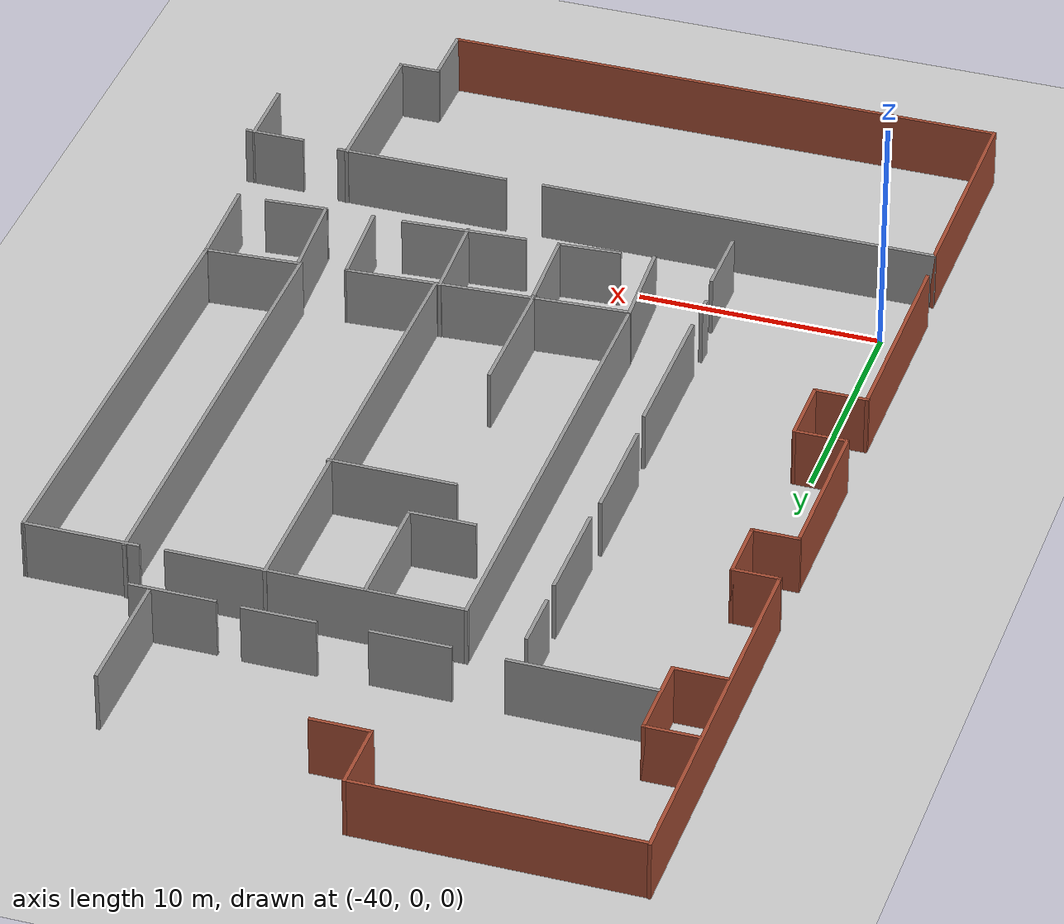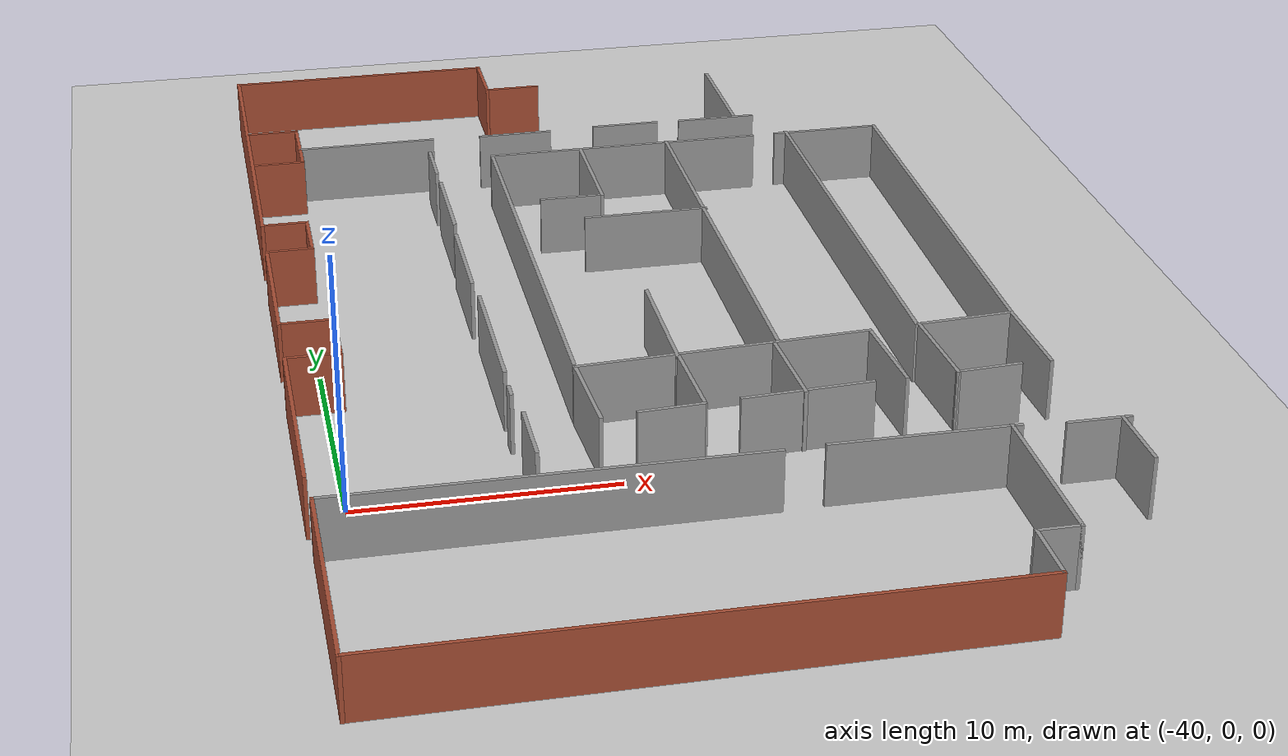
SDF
<sdf version="1.7">
 <world name="default">
  <model name="ground_plane">
   <static>1</static>
   <link name="link">
    <collision name="collision">
     <geometry><plane><normal>0 0 1</normal><size>100 100</size></plane></geometry>
     <surface><friction><ode><mu>100</mu><mu2>50</mu2></ode></friction></surface>
    </collision>
    <visual name="visual">
     <cast_shadows>0</cast_shadows>
     <geometry><plane><normal>0 0 1</normal><size>100 100</size></plane></geometry>
     <material>
      <script><uri>file://media/materials/scripts/gazebo.material</uri><name>Gazebo/Grey</name></script>
     </material>
    </visual>
   </link>
  </model>
  <model name="Sherman_ground">
   <pose>-0.396386 10.2382 0 0 -0 0</pose>
   <link name="Wall_113">
    <collision name="Wall_113_Collision">
     <geometry><box><size>7.25 0.15 2.5</size></box></geometry>
     <pose>0 0 1.25 0 -0 0</pose>
    </collision>
    <visual name="Wall_113_Visual">
     <pose>0 0 1.25 0 -0 0</pose>
     <geometry><box><size>7.25 0.15 2.5</size></box></geometry>
     <material>
      <script><uri>file://media/materials/scripts/gazebo.material</uri><name>Gazebo/Grey</name></script>
      <ambient>1 1 1 1</ambient>
     </material>
     <meta><layer>0</layer></meta>
    </visual>
    <pose>-19.366 -13.1466 0 0 -0 3.14159</pose>
   </link>
   <link name="Wall_117">
    <collision name="Wall_117_Collision">
     <geometry><box><size>4.1198 0.15 2.5</size></box></geometry>
     <pose>0 0 1.25 0 -0 0</pose>
    </collision>
    <visual name="Wall_117_Visual">
     <pose>0 0 1.25 0 -0 0</pose>
     <geometry><box><size>4.1198 0.15 2.5</size></box></geometry>
     <material>
      <script><uri>file://media/materials/scripts/gazebo.material</uri><name>Gazebo/Grey</name></script>
      <ambient>1 1 1 1</ambient>
     </material>
     <meta><layer>0</layer></meta>
    </visual>
    <pose>-30.4407 -7.68509 0 0 -0 -1.51982</pose>
   </link>
   <link name="Wall_119">
    <collision name="Wall_119_Collision">
     <geometry><box><size>11.7407 0.15 2.5</size></box></geometry>
     <pose>0 0 1.25 0 -0 0</pose>
    </collision>
    <visual name="Wall_119_Visual">
     <pose>0 0 1.25 0 -0 0</pose>
     <geometry><box><size>11.7407 0.15 2.5</size></box></geometry>
     <material>
      <script><uri>file://media/materials/scripts/gazebo.material</uri><name>Gazebo/Grey</name></script>
      <ambient>1 1 1 1</ambient>
     </material>
     <meta><layer>0</layer></meta>
    </visual>
    <pose>-24.7567 -5.35889 0 0 -0 0.059371</pose>
   </link>
   <link name="Wall_120">
    <collision name="Wall_120_Collision">
     <geometry><box><size>4.08169 0.15 2.5</size></box></geometry>
     <pose>0 0 1.25 0 -0 0</pose>
    </collision>
    <visual name="Wall_120_Visual">
     <pose>0 0 1.25 0 -0 0</pose>
     <geometry><box><size>4.08169 0.15 2.5</size></box></geometry>
     <material>
      <script><uri>file://media/materials/scripts/gazebo.material</uri><name>Gazebo/Grey</name></script>
      <ambient>1 1 1 1</ambient>
     </material>
     <meta><layer>0</layer></meta>
    </visual>
    <pose>-18.8502 -6.97712 0 0 -0 -1.50902</pose>
   </link>
   <link name="Wall_122">
    <collision name="Wall_122_Collision">
     <geometry><box><size>4.15837 0.15 2.5</size></box></geometry>
     <pose>0 0 1.25 0 -0 0</pose>
    </collision>
    <visual name="Wall_122_Visual">
     <pose>0 0 1.25 0 -0 0</pose>
     <geometry><box><size>4.15837 0.15 2.5</size></box></geometry>
     <material>
      <script><uri>file://media/materials/scripts/gazebo.material</uri><name>Gazebo/Grey</name></script>
      <ambient>1 1 1 1</ambient>
     </material>
     <meta><layer>0</layer></meta>
    </visual>
    <pose>-22.7339 -7.21985 0 0 -0 -1.53041</pose>
   </link>
   <link name="Wall_124">
    <collision name="Wall_124_Collision">
     <geometry><box><size>5.17612 0.15 2.5</size></box></geometry>
     <pose>0 0 1.25 0 -0 0</pose>
    </collision>
    <visual name="Wall_124_Visual">
     <pose>0 0 1.25 0 -0 0</pose>
     <geometry><box><size>5.17612 0.15 2.5</size></box></geometry>
     <material>
      <script><uri>file://media/materials/scripts/gazebo.material</uri><name>Gazebo/Grey</name></script>
      <ambient>1 1 1 1</ambient>
     </material>
     <meta><layer>0</layer></meta>
    </visual>
    <pose>-22.5272 -9.13677 0 0 -0 0.0609</pose>
   </link>
   <link name="Wall_126">
    <collision name="Wall_126_Collision">
     <geometry><box><size>4.0991 0.15 2.5</size></box></geometry>
     <pose>0 0 1.25 0 -0 0</pose>
    </collision>
    <visual name="Wall_126_Visual">
     <pose>0 0 1.25 0 -0 0</pose>
     <geometry><box><size>4.0991 0.15 2.5</size></box></geometry>
     <material>
      <script><uri>file://media/materials/scripts/gazebo.material</uri><name>Gazebo/Grey</name></script>
      <ambient>1 1 1 1</ambient>
     </material>
     <meta><layer>0</layer></meta>
    </visual>
    <pose>-26.5192 -7.40842 0 0 -0 -1.53206</pose>
   </link>
   <link name="Wall_128">
    <collision name="Wall_128_Collision">
     <geometry><box><size>2.63252 0.15 2.5</size></box></geometry>
     <pose>0 0 1.25 0 -0 0</pose>
    </collision>
    <visual name="Wall_128_Visual">
     <pose>0 0 1.25 0 -0 0</pose>
     <geometry><box><size>2.63252 0.15 2.5</size></box></geometry>
     <material>
      <script><uri>file://media/materials/scripts/gazebo.material</uri><name>Gazebo/Grey</name></script>
      <ambient>1 1 1 1</ambient>
     </material>
     <meta><layer>0</layer></meta>
    </visual>
    <pose>-27.6816 -9.45797 0 0 -0 0.06165</pose>
   </link>
   <link name="Wall_132">
    <collision name="Wall_132_Collision">
     <geometry><box><size>4.16245 0.15 2.5</size></box></geometry>
     <pose>0 0 1.25 0 -0 0</pose>
    </collision>
    <visual name="Wall_132_Visual">
     <pose>0 0 1.25 0 -0 0</pose>
     <geometry><box><size>4.16245 0.15 2.5</size></box></geometry>
     <material>
      <script><uri>file://media/materials/scripts/gazebo.material</uri><name>Gazebo/Grey</name></script>
      <ambient>1 1 1 1</ambient>
     </material>
     <meta><layer>0</layer></meta>
    </visual>
    <pose>-16.8571 -6.87607 0 0 -0 -1.51026</pose>
   </link>
   <link name="Wall_133">
    <collision name="Wall_133_Collision">
     <geometry><box><size>2.62309 0.15 2.5</size></box></geometry>
     <pose>0 0 1.25 0 -0 0</pose>
    </collision>
    <visual name="Wall_133_Visual">
     <pose>0 0 1.25 0 -0 0</pose>
     <geometry><box><size>2.62309 0.15 2.5</size></box></geometry>
     <material>
      <script><uri>file://media/materials/scripts/gazebo.material</uri><name>Gazebo/Grey</name></script>
      <ambient>1 1 1 1</ambient>
     </material>
     <meta><layer>0</layer></meta>
    </visual>
    <pose>-15.5018 -8.79771 0 0 -0 0.06548</pose>
   </link>
   <link name="Wall_135">
    <collision name="Wall_135_Collision">
     <geometry><box><size>3.96056 0.15 2.5</size></box></geometry>
     <pose>0 0 1.25 0 -0 0</pose>
    </collision>
    <visual name="Wall_135_Visual">
     <pose>0 0 1.25 0 -0 0</pose>
     <geometry><box><size>3.96056 0.15 2.5</size></box></geometry>
     <material>
      <script><uri>file://media/materials/scripts/gazebo.material</uri><name>Gazebo/Grey</name></script>
      <ambient>1 1 1 1</ambient>
     </material>
     <meta><layer>0</layer></meta>
    </visual>
    <pose>-15.077 -4.75215 0 0 -0 0.063743</pose>
   </link>
   <link name="Wall_136">
    <collision name="Wall_136_Collision">
     <geometry><box><size>4.23782 0.15 2.5</size></box></geometry>
     <pose>0 0 1.25 0 -0 0</pose>
    </collision>
    <visual name="Wall_136_Visual">
     <pose>0 0 1.25 0 -0 0</pose>
     <geometry><box><size>4.23782 0.15 2.5</size></box></geometry>
     <material>
      <script><uri>file://media/materials/scripts/gazebo.material</uri><name>Gazebo/Grey</name></script>
      <ambient>1 1 1 1</ambient>
     </material>
     <meta><layer>0</layer></meta>
    </visual>
    <pose>-13.1149 -6.67379 0 0 -0 -1.5411</pose>
   </link>
   <link name="Wall_138">
    <collision name="Wall_138_Collision">
     <geometry><box><size>19.4165 0.15 2.5</size></box></geometry>
     <pose>0 0 1.25 0 -0 0</pose>
    </collision>
    <visual name="Wall_138_Visual">
     <pose>0 0 1.25 0 -0 0</pose>
     <geometry><box><size>19.4165 0.15 2.5</size></box></geometry>
     <material>
      <script><uri>file://media/materials/scripts/gazebo.material</uri><name>Gazebo/Grey</name></script>
      <ambient>1 1 1 1</ambient>
     </material>
     <meta><layer>0</layer></meta>
    </visual>
    <pose>-13.0667 5.00187 0 0 -0 -1.5821</pose>
   </link>
   <link name="Wall_140">
    <collision name="Wall_140_Collision">
     <geometry><box><size>19.75 0.15 2.5</size></box></geometry>
     <pose>0 0 1.25 0 -0 0</pose>
    </collision>
    <visual name="Wall_140_Visual">
     <pose>0 0 1.25 0 -0 0</pose>
     <geometry><box><size>19.75 0.15 2.5</size></box></geometry>
     <material>
      <script><uri>file://media/materials/scripts/gazebo.material</uri><name>Gazebo/Grey</name></script>
      <ambient>1 1 1 1</ambient>
     </material>
     <meta><layer>0</layer></meta>
    </visual>
    <pose>-17.0706 4.92221 0 0 -0 -1.5708</pose>
   </link>
   <link name="Wall_145">
    <collision name="Wall_145_Collision">
     <geometry><box><size>20.25 0.15 2.5</size></box></geometry>
     <pose>0 0 1.25 0 -0 0</pose>
    </collision>
    <visual name="Wall_145_Visual">
     <pose>0 0 1.25 0 -0 0</pose>
     <geometry><box><size>20.25 0.15 2.5</size></box></geometry>
     <material>
      <script><uri>file://media/materials/scripts/gazebo.material</uri><name>Gazebo/Grey</name></script>
      <ambient>1 1 1 1</ambient>
     </material>
     <meta><layer>0</layer></meta>
    </visual>
    <pose>-30.5472 4.55394 0 0 -0 -1.5708</pose>
   </link>
   <link name="Wall_147">
    <collision name="Wall_147_Collision">
     <geometry><box><size>5.75 0.15 2.5</size></box></geometry>
     <pose>0 0 1.25 0 -0 0</pose>
    </collision>
    <visual name="Wall_147_Visual">
     <pose>0 0 1.25 0 -0 0</pose>
     <geometry><box><size>5.75 0.15 2.5</size></box></geometry>
     <material>
      <script><uri>file://media/materials/scripts/gazebo.material</uri><name>Gazebo/Grey</name></script>
      <ambient>1 1 1 1</ambient>
     </material>
     <meta><layer>0</layer></meta>
    </visual>
    <pose>-26.6251 -2.78473 0 0 -0 -1.5708</pose>
   </link>
   <link name="Wall_149">
    <collision name="Wall_149_Collision">
     <geometry><box><size>20 0.15 2.5</size></box></geometry>
     <pose>0 0 1.25 0 -0 0</pose>
    </collision>
    <visual name="Wall_149_Visual">
     <pose>0 0 1.25 0 -0 0</pose>
     <geometry><box><size>20 0.15 2.5</size></box></geometry>
     <material>
      <script><uri>file://media/materials/scripts/gazebo.material</uri><name>Gazebo/Grey</name></script>
      <ambient>1 1 1 1</ambient>
     </material>
     <meta><layer>0</layer></meta>
    </visual>
    <pose>-22.6384 4.70426 0 0 -0 -1.5708</pose>
   </link>
   <link name="Wall_151">
    <collision name="Wall_151_Collision">
     <geometry><box><size>5.25 0.15 2.5</size></box></geometry>
     <pose>0 0 1.25 0 -0 0</pose>
    </collision>
    <visual name="Wall_151_Visual">
     <pose>0 0 1.25 0 -0 0</pose>
     <geometry><box><size>5.25 0.15 2.5</size></box></geometry>
     <material>
      <script><uri>file://media/materials/scripts/gazebo.material</uri><name>Gazebo/Grey</name></script>
      <ambient>1 1 1 1</ambient>
     </material>
     <meta><layer>0</layer></meta>
    </visual>
    <pose>-25.1129 7.27848 0 0 -0 0</pose>
   </link>
   <link name="Wall_154">
    <collision name="Wall_154_Collision">
     <geometry><box><size>3 0.15 2.5</size></box></geometry>
     <pose>0 0 1.25 0 -0 0</pose>
    </collision>
    <visual name="Wall_154_Visual">
     <pose>0 0 1.25 0 -0 0</pose>
     <geometry><box><size>3 0.15 2.5</size></box></geometry>
     <material>
      <script><uri>file://media/materials/scripts/gazebo.material</uri><name>Gazebo/Grey</name></script>
      <ambient>1 1 1 1</ambient>
     </material>
     <meta><layer>0</layer></meta>
    </visual>
    <pose>-32.9828 -10.229 0 0 -0 1.5708</pose>
   </link>
   <link name="Wall_156">
    <collision name="Wall_156_Collision">
     <geometry><box><size>0.75 0.15 2.5</size></box></geometry>
     <pose>0 0 1.25 0 -0 0</pose>
    </collision>
    <visual name="Wall_156_Visual">
     <pose>0 0 1.25 0 -0 0</pose>
     <geometry><box><size>0.75 0.15 2.5</size></box></geometry>
     <material>
      <script><uri>file://media/materials/scripts/gazebo.material</uri><name>Gazebo/Grey</name></script>
      <ambient>1 1 1 1</ambient>
     </material>
     <meta><layer>0</layer></meta>
    </visual>
    <pose>-33.1938 -7.02705 0 0 -0 1.5708</pose>
   </link>
   <link name="Wall_158">
    <collision name="Wall_158_Collision">
     <geometry><box><size>6.5 0.15 2.5</size></box></geometry>
     <pose>0 0 1.25 0 -0 0</pose>
    </collision>
    <visual name="Wall_158_Visual">
     <pose>0 0 1.25 0 -0 0</pose>
     <geometry><box><size>6.5 0.15 2.5</size></box></geometry>
     <material>
      <script><uri>file://media/materials/scripts/gazebo.material</uri><name>Gazebo/Grey</name></script>
      <ambient>1 1 1 1</ambient>
     </material>
     <meta><layer>0</layer></meta>
    </visual>
    <pose>-33.1587 -2.39312 0 0 -0 1.5708</pose>
   </link>
   <link name="Wall_160">
    <collision name="Wall_160_Collision">
     <geometry><box><size>4.75 0.15 2.5</size></box></geometry>
     <pose>0 0 1.25 0 -0 0</pose>
    </collision>
    <visual name="Wall_160_Visual">
     <pose>0 0 1.25 0 -0 0</pose>
     <geometry><box><size>4.75 0.15 2.5</size></box></geometry>
     <material>
      <script><uri>file://media/materials/scripts/gazebo.material</uri><name>Gazebo/Grey</name></script>
      <ambient>1 1 1 1</ambient>
     </material>
     <meta><layer>0</layer></meta>
    </visual>
    <pose>-33.2656 4.37213 0 0 -0 1.5708</pose>
   </link>
   <link name="Wall_163">
    <collision name="Wall_163_Collision">
     <geometry><box><size>4.5 0.15 2.5</size></box></geometry>
     <pose>0 0 1.25 0 -0 0</pose>
    </collision>
    <visual name="Wall_163_Visual">
     <pose>0 0 1.25 0 -0 0</pose>
     <geometry><box><size>4.5 0.15 2.5</size></box></geometry>
     <material>
      <script><uri>file://media/materials/scripts/gazebo.material</uri><name>Gazebo/Grey</name></script>
      <ambient>1 1 1 1</ambient>
     </material>
     <meta><layer>0</layer></meta>
    </visual>
    <pose>-33.1739 9.93691 0 0 -0 1.5708</pose>
   </link>
   <link name="Wall_165">
    <collision name="Wall_165_Collision">
     <geometry><box><size>2.5 0.15 2.5</size></box></geometry>
     <pose>0 0 1.25 0 -0 0</pose>
    </collision>
    <visual name="Wall_165_Visual">
     <pose>0 0 1.25 0 -0 0</pose>
     <geometry><box><size>2.5 0.15 2.5</size></box></geometry>
     <material>
      <script><uri>file://media/materials/scripts/gazebo.material</uri><name>Gazebo/Grey</name></script>
      <ambient>1 1 1 1</ambient>
     </material>
     <meta><layer>0</layer></meta>
    </visual>
    <pose>-33.2045 14.3514 0 0 -0 1.5708</pose>
   </link>
   <link name="Wall_167">
    <collision name="Wall_167_Collision">
     <geometry><box><size>3.25 0.15 2.5</size></box></geometry>
     <pose>0 0 1.25 0 -0 0</pose>
    </collision>
    <visual name="Wall_167_Visual">
     <pose>0 0 1.25 0 -0 0</pose>
     <geometry><box><size>3.25 0.15 2.5</size></box></geometry>
     <material>
      <script><uri>file://media/materials/scripts/gazebo.material</uri><name>Gazebo/Grey</name></script>
      <ambient>1 1 1 1</ambient>
     </material>
     <meta><layer>0</layer></meta>
    </visual>
    <pose>-29.148 16.9198 0 0 -0 0</pose>
   </link>
   <link name="Wall_169">
    <collision name="Wall_169_Collision">
     <geometry><box><size>3 0.15 2.5</size></box></geometry>
     <pose>0 0 1.25 0 -0 0</pose>
    </collision>
    <visual name="Wall_169_Visual">
     <pose>0 0 1.25 0 -0 0</pose>
     <geometry><box><size>3 0.15 2.5</size></box></geometry>
     <material>
      <script><uri>file://media/materials/scripts/gazebo.material</uri><name>Gazebo/Grey</name></script>
      <ambient>1 1 1 1</ambient>
     </material>
     <meta><layer>0</layer></meta>
    </visual>
    <pose>-24.0327 17.0262 0 0 -0 0</pose>
   </link>
   <link name="Wall_171">
    <collision name="Wall_171_Collision">
     <geometry><box><size>3.5 0.15 2.5</size></box></geometry>
     <pose>0 0 1.25 0 -0 0</pose>
    </collision>
    <visual name="Wall_171_Visual">
     <pose>0 0 1.25 0 -0 0</pose>
     <geometry><box><size>3.5 0.15 2.5</size></box></geometry>
     <material>
      <script><uri>file://media/materials/scripts/gazebo.material</uri><name>Gazebo/Grey</name></script>
      <ambient>1 1 1 1</ambient>
     </material>
     <meta><layer>0</layer></meta>
    </visual>
    <pose>-19.8193 16.973 0 0 -0 0</pose>
   </link>
   <link name="Wall_191">
    <collision name="Wall_191_Collision">
     <geometry><box><size>2.5 0.15 2.5</size></box></geometry>
     <pose>0 0 1.25 0 -0 0</pose>
    </collision>
    <visual name="Wall_191_Visual">
     <pose>0 0 1.25 0 -0 0</pose>
     <geometry><box><size>2.5 0.15 2.5</size></box></geometry>
     <material>
      <script><uri>file://media/materials/scripts/gazebo.material</uri><name>Gazebo/Bricks</name></script>
      <ambient>1 1 1 1</ambient>
     </material>
     <meta><layer>0</layer></meta>
    </visual>
    <pose>-28.4037 22.5247 0 0 -0 0</pose>
   </link>
   <link name="Wall_193">
    <collision name="Wall_193_Collision">
     <geometry><box><size>3.10502 0.15 2.5</size></box></geometry>
     <pose>0 0 1.25 0 -0 0</pose>
    </collision>
    <visual name="Wall_193_Visual">
     <pose>0 0 1.25 0 -0 0</pose>
     <geometry><box><size>3.10502 0.15 2.5</size></box></geometry>
     <material>
      <script><uri>file://media/materials/scripts/gazebo.material</uri><name>Gazebo/Bricks</name></script>
      <ambient>1 1 1 1</ambient>
     </material>
     <meta><layer>0</layer></meta>
    </visual>
    <pose>-29.5787 24.0022 0 0 -0 -1.5708</pose>
   </link>
   <link name="Wall_196">
    <collision name="Wall_196_Collision">
     <geometry><box><size>11.5 0.15 2.5</size></box></geometry>
     <pose>0 0 1.25 0 -0 0</pose>
    </collision>
    <visual name="Wall_196_Visual">
     <pose>0 0 1.25 0 -0 0</pose>
     <geometry><box><size>11.5 0.15 2.5</size></box></geometry>
     <material>
      <script><uri>file://media/materials/scripts/gazebo.material</uri><name>Gazebo/Bricks</name></script>
      <ambient>1 1 1 1</ambient>
     </material>
     <meta><layer>0</layer></meta>
    </visual>
    <pose>-35.2537 25.4797 0 0 -0 3.14159</pose>
   </link>
   <link name="Wall_198">
    <collision name="Wall_198_Collision">
     <geometry><box><size>16.5 0.15 2.5</size></box></geometry>
     <pose>0 0 1.25 0 -0 0</pose>
    </collision>
    <visual name="Wall_198_Visual">
     <pose>0 0 1.25 0 -0 0</pose>
     <geometry><box><size>16.5 0.15 2.5</size></box></geometry>
     <material>
      <script><uri>file://media/materials/scripts/gazebo.material</uri><name>Gazebo/Bricks</name></script>
      <ambient>1 1 1 1</ambient>
     </material>
     <meta><layer>0</layer></meta>
    </visual>
    <pose>-41.047 17.3369 0 0 -0 1.5708</pose>
   </link>
   <link name="Wall_200">
    <collision name="Wall_200_Collision">
     <geometry><box><size>2.25 0.15 2.5</size></box></geometry>
     <pose>0 0 1.25 0 -0 0</pose>
    </collision>
    <visual name="Wall_200_Visual">
     <pose>0 0 1.25 0 -0 0</pose>
     <geometry><box><size>2.25 0.15 2.5</size></box></geometry>
     <material>
      <script><uri>file://media/materials/scripts/gazebo.material</uri><name>Gazebo/Bricks</name></script>
      <ambient>1 1 1 1</ambient>
     </material>
     <meta><layer>0</layer></meta>
    </visual>
    <pose>-39.8915 19.1827 0 0 -0 0</pose>
   </link>
   <link name="Wall_201">
    <collision name="Wall_201_Collision">
     <geometry><box><size>3.75 0.15 2.5</size></box></geometry>
     <pose>0 0 1.25 0 -0 0</pose>
    </collision>
    <visual name="Wall_201_Visual">
     <pose>0 0 1.25 0 -0 0</pose>
     <geometry><box><size>3.75 0.15 2.5</size></box></geometry>
     <material>
      <script><uri>file://media/materials/scripts/gazebo.material</uri><name>Gazebo/Bricks</name></script>
      <ambient>1 1 1 1</ambient>
     </material>
     <meta><layer>0</layer></meta>
    </visual>
    <pose>-38.8415 17.3827 0 0 -0 -1.5708</pose>
   </link>
   <link name="Wall_202">
    <collision name="Wall_202_Collision">
     <geometry><box><size>2.25 0.15 2.5</size></box></geometry>
     <pose>0 0 1.25 0 -0 0</pose>
    </collision>
    <visual name="Wall_202_Visual">
     <pose>0 0 1.25 0 -0 0</pose>
     <geometry><box><size>2.25 0.15 2.5</size></box></geometry>
     <material>
      <script><uri>file://media/materials/scripts/gazebo.material</uri><name>Gazebo/Bricks</name></script>
      <ambient>1 1 1 1</ambient>
     </material>
     <meta><layer>0</layer></meta>
    </visual>
    <pose>-39.8915 15.5827 0 0 -0 3.14159</pose>
   </link>
   <link name="Wall_205">
    <collision name="Wall_205_Collision">
     <geometry><box><size>6 0.15 2.5</size></box></geometry>
     <pose>0 0 1.25 0 -0 0</pose>
    </collision>
    <visual name="Wall_205_Visual">
     <pose>0 0 1.25 0 -0 0</pose>
     <geometry><box><size>6 0.15 2.5</size></box></geometry>
     <material>
      <script><uri>file://media/materials/scripts/gazebo.material</uri><name>Gazebo/Grey</name></script>
      <ambient>1 1 1 1</ambient>
     </material>
     <meta><layer>0</layer></meta>
    </visual>
    <pose>-35.8547 17.01 0 0 -0 0</pose>
   </link>
   <link name="Wall_207">
    <collision name="Wall_207_Collision">
     <geometry><box><size>5.25 0.15 2.5</size></box></geometry>
     <pose>0 0 1.25 0 -0 0</pose>
    </collision>
    <visual name="Wall_207_Visual">
     <pose>0 0 1.25 0 -0 0</pose>
     <geometry><box><size>5.25 0.15 2.5</size></box></geometry>
     <material>
      <script><uri>file://media/materials/scripts/gazebo.material</uri><name>Gazebo/Grey</name></script>
      <ambient>1 1 1 1</ambient>
     </material>
     <meta><layer>0</layer></meta>
    </visual>
    <pose>-26.5742 12.0433 0 0 -0 -1.5708</pose>
   </link>
   <link name="Wall_208">
    <collision name="Wall_208_Collision">
     <geometry><box><size>2.75 0.15 2.5</size></box></geometry>
     <pose>0 0 1.25 0 -0 0</pose>
    </collision>
    <visual name="Wall_208_Visual">
     <pose>0 0 1.25 0 -0 0</pose>
     <geometry><box><size>2.75 0.15 2.5</size></box></geometry>
     <material>
      <script><uri>file://media/materials/scripts/gazebo.material</uri><name>Gazebo/Grey</name></script>
      <ambient>1 1 1 1</ambient>
     </material>
     <meta><layer>0</layer></meta>
    </visual>
    <pose>-27.8742 9.49334 0 0 -0 3.14159</pose>
   </link>
   <link name="Wall_210">
    <collision name="Wall_210_Collision">
     <geometry><box><size>2 0.15 2.5</size></box></geometry>
     <pose>0 0 1.25 0 -0 0</pose>
    </collision>
    <visual name="Wall_210_Visual">
     <pose>0 0 1.25 0 -0 0</pose>
     <geometry><box><size>2 0.15 2.5</size></box></geometry>
     <material>
      <script><uri>file://media/materials/scripts/gazebo.material</uri><name>Gazebo/Bricks</name></script>
      <ambient>1 1 1 1</ambient>
     </material>
     <meta><layer>0</layer></meta>
    </visual>
    <pose>-40.122 9.16193 0 0 -0 0</pose>
   </link>
   <link name="Wall_211">
    <collision name="Wall_211_Collision">
     <geometry><box><size>2.75 0.15 2.5</size></box></geometry>
     <pose>0 0 1.25 0 -0 0</pose>
    </collision>
    <visual name="Wall_211_Visual">
     <pose>0 0 1.25 0 -0 0</pose>
     <geometry><box><size>2.75 0.15 2.5</size></box></geometry>
     <material>
      <script><uri>file://media/materials/scripts/gazebo.material</uri><name>Gazebo/Bricks</name></script>
      <ambient>1 1 1 1</ambient>
     </material>
     <meta><layer>0</layer></meta>
    </visual>
    <pose>-39.197 7.86194 0 0 -0 -1.5708</pose>
   </link>
   <link name="Wall_212">
    <collision name="Wall_212_Collision">
     <geometry><box><size>2 0.15 2.5</size></box></geometry>
     <pose>0 0 1.25 0 -0 0</pose>
    </collision>
    <visual name="Wall_212_Visual">
     <pose>0 0 1.25 0 -0 0</pose>
     <geometry><box><size>2 0.15 2.5</size></box></geometry>
     <material>
      <script><uri>file://media/materials/scripts/gazebo.material</uri><name>Gazebo/Bricks</name></script>
      <ambient>1 1 1 1</ambient>
     </material>
     <meta><layer>0</layer></meta>
    </visual>
    <pose>-40.122 6.56194 0 0 -0 3.14159</pose>
   </link>
   <link name="Wall_213">
    <collision name="Wall_213_Collision">
     <geometry><box><size>6.75 0.15 2.5</size></box></geometry>
     <pose>0 0 1.25 0 -0 0</pose>
    </collision>
    <visual name="Wall_213_Visual">
     <pose>0 0 1.25 0 -0 0</pose>
     <geometry><box><size>6.75 0.15 2.5</size></box></geometry>
     <material>
      <script><uri>file://media/materials/scripts/gazebo.material</uri><name>Gazebo/Bricks</name></script>
      <ambient>1 1 1 1</ambient>
     </material>
     <meta><layer>0</layer></meta>
    </visual>
    <pose>-41.047 3.26193 0 0 -0 -1.5708</pose>
   </link>
   <link name="Wall_214">
    <collision name="Wall_214_Collision">
     <geometry><box><size>2.25 0.15 2.5</size></box></geometry>
     <pose>0 0 1.25 0 -0 0</pose>
    </collision>
    <visual name="Wall_214_Visual">
     <pose>0 0 1.25 0 -0 0</pose>
     <geometry><box><size>2.25 0.15 2.5</size></box></geometry>
     <material>
      <script><uri>file://media/materials/scripts/gazebo.material</uri><name>Gazebo/Bricks</name></script>
      <ambient>1 1 1 1</ambient>
     </material>
     <meta><layer>0</layer></meta>
    </visual>
    <pose>-39.997 -0.038065 0 0 -0 0</pose>
   </link>
   <link name="Wall_215">
    <collision name="Wall_215_Collision">
     <geometry><box><size>3 0.15 2.5</size></box></geometry>
     <pose>0 0 1.25 0 -0 0</pose>
    </collision>
    <visual name="Wall_215_Visual">
     <pose>0 0 1.25 0 -0 0</pose>
     <geometry><box><size>3 0.15 2.5</size></box></geometry>
     <material>
      <script><uri>file://media/materials/scripts/gazebo.material</uri><name>Gazebo/Bricks</name></script>
      <ambient>1 1 1 1</ambient>
     </material>
     <meta><layer>0</layer></meta>
    </visual>
    <pose>-38.947 -1.46307 0 0 -0 -1.5708</pose>
   </link>
   <link name="Wall_216">
    <collision name="Wall_216_Collision">
     <geometry><box><size>2.25 0.15 2.5</size></box></geometry>
     <pose>0 0 1.25 0 -0 0</pose>
    </collision>
    <visual name="Wall_216_Visual">
     <pose>0 0 1.25 0 -0 0</pose>
     <geometry><box><size>2.25 0.15 2.5</size></box></geometry>
     <material>
      <script><uri>file://media/materials/scripts/gazebo.material</uri><name>Gazebo/Bricks</name></script>
      <ambient>1 1 1 1</ambient>
     </material>
     <meta><layer>0</layer></meta>
    </visual>
    <pose>-39.997 -2.88807 0 0 -0 3.14159</pose>
   </link>
   <link name="Wall_218">
    <collision name="Wall_218_Collision">
     <geometry><box><size>9 0.15 2.5</size></box></geometry>
     <pose>0 0 1.25 0 -0 0</pose>
    </collision>
    <visual name="Wall_218_Visual">
     <pose>0 0 1.25 0 -0 0</pose>
     <geometry><box><size>9 0.15 2.5</size></box></geometry>
     <material>
      <script><uri>file://media/materials/scripts/gazebo.material</uri><name>Gazebo/Bricks</name></script>
      <ambient>1 1 1 1</ambient>
     </material>
     <meta><layer>0</layer></meta>
    </visual>
    <pose>-41.047 -7.31306 0 0 -0 -1.5708</pose>
   </link>
   <link name="Wall_233">
    <collision name="Wall_233_Collision">
     <geometry><box><size>2.5 0.15 2.5</size></box></geometry>
     <pose>0 0 1.25 0 -0 0</pose>
    </collision>
    <visual name="Wall_233_Visual">
     <pose>0 0 1.25 0 -0 0</pose>
     <geometry><box><size>2.5 0.15 2.5</size></box></geometry>
     <material>
      <script><uri>file://media/materials/scripts/gazebo.material</uri><name>Gazebo/Grey</name></script>
      <ambient>1 1 1 1</ambient>
     </material>
     <meta><layer>0</layer></meta>
    </visual>
    <pose>-12.9493 -13.3309 0 0 -0 3.14159</pose>
   </link>
   <link name="Wall_235">
    <collision name="Wall_235_Collision">
     <geometry><box><size>3.06461 0.15 2.5</size></box></geometry>
     <pose>0 0 1.25 0 -0 0</pose>
    </collision>
    <visual name="Wall_235_Visual">
     <pose>0 0 1.25 0 -0 0</pose>
     <geometry><box><size>3.06461 0.15 2.5</size></box></geometry>
     <material>
      <script><uri>file://media/materials/scripts/gazebo.material</uri><name>Gazebo/Grey</name></script>
      <ambient>1 1 1 1</ambient>
     </material>
     <meta><layer>0</layer></meta>
    </visual>
    <pose>-12.0602 -14.7881 0 0 -0 -1.56064</pose>
   </link>
   <link name="Wall_238">
    <collision name="Wall_238_Collision">
     <geometry><box><size>7 0.15 2.5</size></box></geometry>
     <pose>0 0 1.25 0 -0 0</pose>
    </collision>
    <visual name="Wall_238_Visual">
     <pose>0 0 1.25 0 -0 0</pose>
     <geometry><box><size>7 0.15 2.5</size></box></geometry>
     <material>
      <script><uri>file://media/materials/scripts/gazebo.material</uri><name>Gazebo/Grey</name></script>
      <ambient>1 1 1 1</ambient>
     </material>
     <meta><layer>0</layer></meta>
    </visual>
    <pose>-16.146 -16.5477 0 0 -0 -1.5708</pose>
   </link>
   <link name="Wall_243">
    <collision name="Wall_243_Collision">
     <geometry><box><size>1.75 0.15 2.5</size></box></geometry>
     <pose>0 0 1.25 0 -0 0</pose>
    </collision>
    <visual name="Wall_243_Visual">
     <pose>0 0 1.25 0 -0 0</pose>
     <geometry><box><size>1.75 0.15 2.5</size></box></geometry>
     <material>
      <script><uri>file://media/materials/scripts/gazebo.material</uri><name>Gazebo/Grey</name></script>
      <ambient>1 1 1 1</ambient>
     </material>
     <meta><layer>0</layer></meta>
    </visual>
    <pose>-16.946 -19.9727 0 0 -0 3.14159</pose>
   </link>
   <link name="Wall_244">
    <collision name="Wall_244_Collision">
     <geometry><box><size>2.70374 0.15 2.5</size></box></geometry>
     <pose>0 0 1.25 0 -0 0</pose>
    </collision>
    <visual name="Wall_244_Visual">
     <pose>0 0 1.25 0 -0 0</pose>
     <geometry><box><size>2.70374 0.15 2.5</size></box></geometry>
     <material>
      <script><uri>file://media/materials/scripts/gazebo.material</uri><name>Gazebo/Grey</name></script>
      <ambient>1 1 1 1</ambient>
     </material>
     <meta><layer>0</layer></meta>
    </visual>
    <pose>-17.746 -21.2496 0 0 -0 -1.5708</pose>
   </link>
   <link name="Wall_245">
    <collision name="Wall_245_Collision">
     <geometry><box><size>23.25 0.15 2.5</size></box></geometry>
     <pose>0 0 1.25 0 -0 0</pose>
    </collision>
    <visual name="Wall_245_Visual">
     <pose>0 0 1.25 0 -0 0</pose>
     <geometry><box><size>23.25 0.15 2.5</size></box></geometry>
     <material>
      <script><uri>file://media/materials/scripts/gazebo.material</uri><name>Gazebo/Bricks</name></script>
      <ambient>1 1 1 1</ambient>
     </material>
     <meta><layer>0</layer></meta>
    </visual>
    <pose>-29.296 -22.5496 0 0 -0 3.14159</pose>
   </link>
   <link name="Wall_250">
    <collision name="Wall_250_Collision">
     <geometry><box><size>16.5 0.15 2.5</size></box></geometry>
     <pose>0 0 1.25 0 -0 0</pose>
    </collision>
    <visual name="Wall_250_Visual">
     <pose>0 0 1.25 0 -0 0</pose>
     <geometry><box><size>16.5 0.15 2.5</size></box></geometry>
     <material>
      <script><uri>file://media/materials/scripts/gazebo.material</uri><name>Gazebo/Grey</name></script>
      <ambient>1 1 1 1</ambient>
     </material>
     <meta><layer>0</layer></meta>
    </visual>
    <pose>-32.7439 -13.2153 0 0 -0 0</pose>
   </link>
   <link name="Wall_252">
    <collision name="Wall_252_Collision">
     <geometry><box><size>9.5 0.15 2.5</size></box></geometry>
     <pose>0 0 1.25 0 -0 0</pose>
    </collision>
    <visual name="Wall_252_Visual">
     <pose>0 0 1.25 0 -0 0</pose>
     <geometry><box><size>9.5 0.15 2.5</size></box></geometry>
     <material>
      <script><uri>file://media/materials/scripts/gazebo.material</uri><name>Gazebo/Bricks</name></script>
      <ambient>1 1 1 1</ambient>
     </material>
     <meta><layer>0</layer></meta>
    </visual>
    <pose>-40.9189 -17.8903 0 0 -0 -1.5708</pose>
   </link>
   <link name="Wall_259">
    <collision name="Wall_259_Collision">
     <geometry><box><size>5.5 0.15 2.5</size></box></geometry>
     <pose>0 0 1.25 0 -0 0</pose>
    </collision>
    <visual name="Wall_259_Visual">
     <pose>0 0 1.25 0 -0 0</pose>
     <geometry><box><size>5.5 0.15 2.5</size></box></geometry>
     <material>
      <script><uri>file://media/materials/scripts/gazebo.material</uri><name>Gazebo/Grey</name></script>
      <ambient>1 1 1 1</ambient>
     </material>
     <meta><layer>0</layer></meta>
    </visual>
    <pose>-18.9395 19.8255 0 0 -0 -1.5708</pose>
   </link>
   <link name="Wall_94">
    <collision name="Wall_94_Collision">
     <geometry><box><size>4.75 0.15 2.5</size></box></geometry>
     <pose>0 0 1.25 0 -0 0</pose>
    </collision>
    <visual name="Wall_94_Visual">
     <pose>0 0 1.25 0 -0 0</pose>
     <geometry><box><size>4.75 0.15 2.5</size></box></geometry>
     <material>
      <script><uri>file://media/materials/scripts/gazebo.material</uri><name>Gazebo/Grey</name></script>
      <ambient>1 1 1 1</ambient>
     </material>
     <meta><layer>0</layer></meta>
    </visual>
    <pose>-15.2578 14.6345 0 0 -0 3.14159</pose>
   </link>
   <link name="Wall_96">
    <collision name="Wall_96_Collision">
     <geometry><box><size>12 0.15 2.5</size></box></geometry>
     <pose>0 0 1.25 0 -0 0</pose>
    </collision>
    <visual name="Wall_96_Visual">
     <pose>0 0 1.25 0 -0 0</pose>
     <geometry><box><size>12 0.15 2.5</size></box></geometry>
     <material>
      <script><uri>file://media/materials/scripts/gazebo.material</uri><name>Gazebo/Grey</name></script>
      <ambient>1 1 1 1</ambient>
     </material>
     <meta><layer>0</layer></meta>
    </visual>
    <pose>-24.6222 14.6039 0 0 -0 0</pose>
   </link>
   <static>1</static>
  </model>
 </world>
</sdf>
